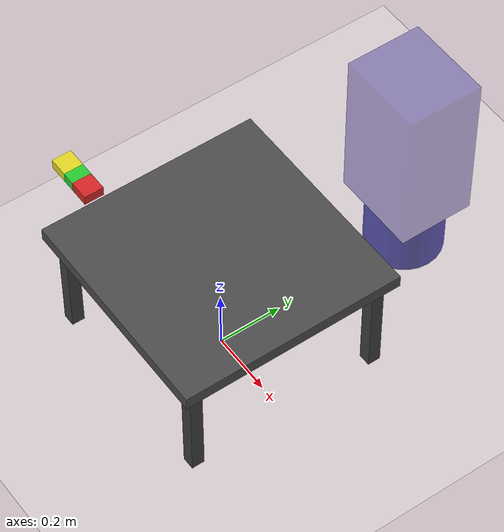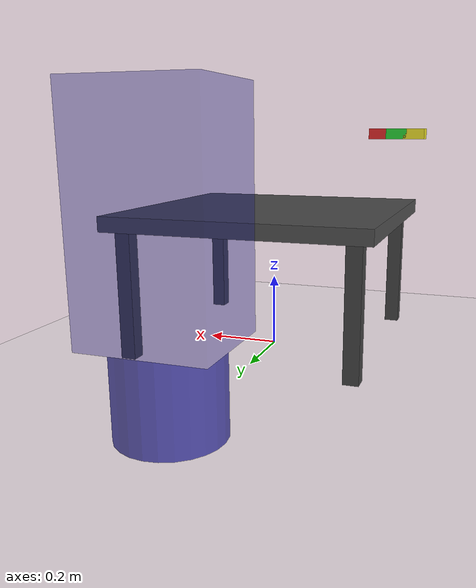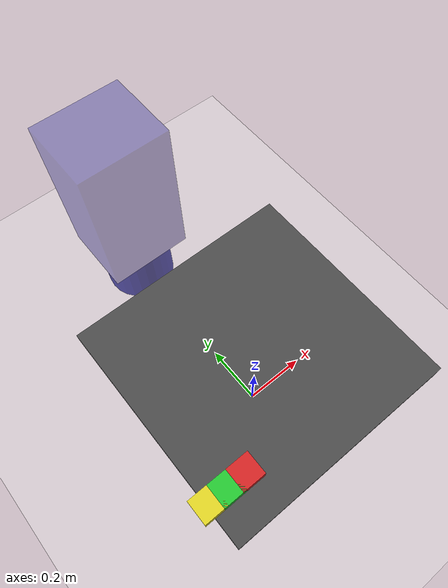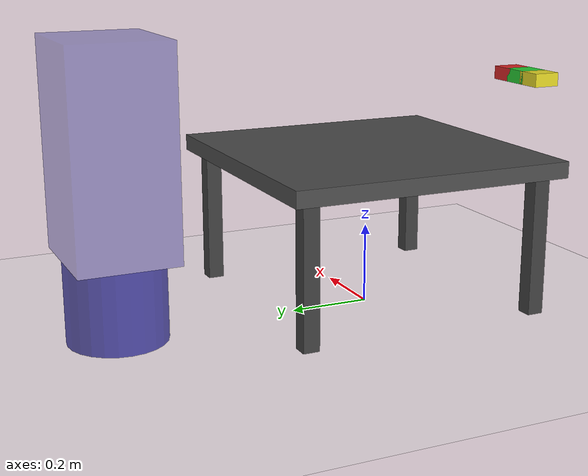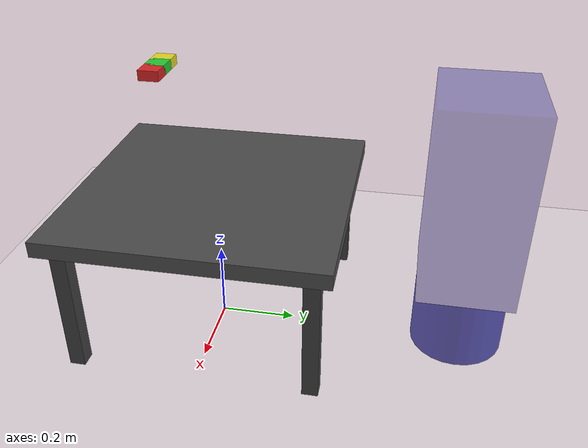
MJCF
<mujoco model="baxter_tower_poc">
  <option timestep="0.002" gravity="0 0 -9.81" integrator="implicitfast"/>
  <compiler angle="radian" autolimits="true"/>

  <default>
    <geom friction="1 0.02 0.001" solref="0.01 1" solimp="0.95 0.99 0.001"/>
  </default>

  <asset>
    <texture name="grid" type="2d" builtin="checker" width="512" height="512"
             rgb1="0.92 0.92 0.92" rgb2="0.82 0.82 0.82"/>
    <material name="gridmat" texture="grid" texrepeat="8 8" reflectance="0.0"/>
  </asset>

  <worldbody>
    <!-- Floor -->
    <geom name="floor" type="plane" size="4 4 0.1" material="gridmat" rgba="1 1 1 1"/>

    <!-- Table -->
    <body name="table" pos="0 0 0.38">
      <geom name="table_top" type="box" size="0.35 0.35 0.02" rgba="0.3 0.3 0.3 1"/>
      <geom type="box" pos=" 0.30  0.30 -0.18" size="0.02 0.02 0.18" rgba="0.25 0.25 0.25 1"/>
      <geom type="box" pos=" 0.30 -0.30 -0.18" size="0.02 0.02 0.18" rgba="0.25 0.25 0.25 1"/>
      <geom type="box" pos="-0.30  0.30 -0.18" size="0.02 0.02 0.18" rgba="0.25 0.25 0.25 1"/>
      <geom type="box" pos="-0.30 -0.30 -0.18" size="0.02 0.02 0.18" rgba="0.25 0.25 0.25 1"/>
    </body>

    <!-- Baxter placeholder (replace later with real Baxter MJCF/URDF conversion) -->
    <body name="baxter_base" pos="0.0 0.65 0.0">
      <geom type="cylinder" size="0.12 0.20" rgba="0.1 0.1 0.6 0.7"/>
      <geom type="box" pos="0 0 0.45" size="0.14 0.12 0.25" rgba="0.1 0.1 0.6 0.35"/>
    </body>

<!-- Cameras that automatically aim at the table body -->
<camera name="cam_main" pos="0.6 0.6 0.9" quat="0.330569 0.192797 0.465453 0.798065"/>

    <!-- Blocks (free bodies) -->
    <body name="block_red" pos="-0.25 -0.25 0.60">
      <freejoint/>
      <geom type="box" size="0.03 0.03 0.015" rgba="0.85 0.15 0.15 1"/>
    </body>

    <body name="block_green" pos="-0.30 -0.25 0.60">
      <freejoint/>
      <geom type="box" size="0.03 0.03 0.015" rgba="0.15 0.80 0.20 1"/>
    </body>

    <body name="block_yellow" pos="-0.35 -0.25 0.60">
      <freejoint/>
      <geom type="box" size="0.03 0.03 0.015" rgba="0.90 0.85 0.15 1"/>
    </body>
  </worldbody>
</mujoco>
